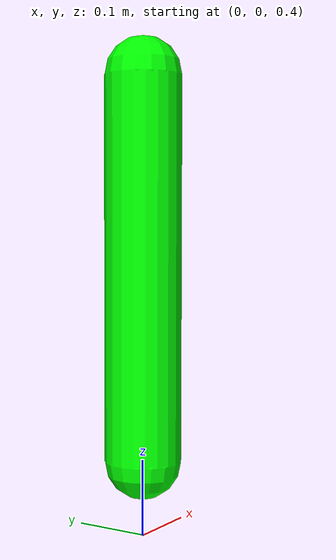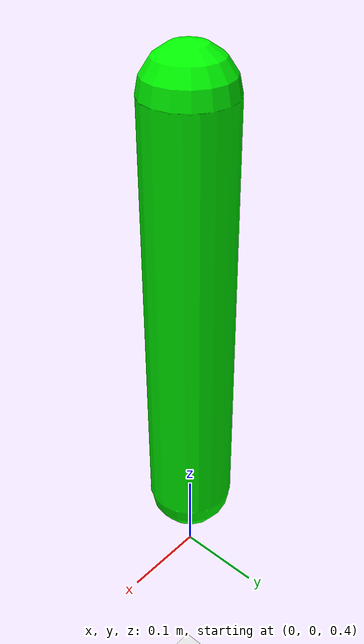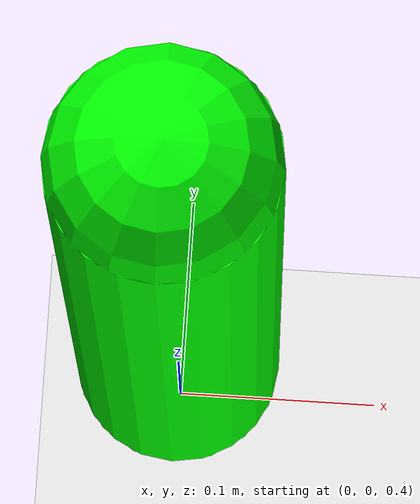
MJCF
<mujoco>
  <option gravity="0 0 -9.81"/>
  <visual>
    <headlight diffuse="0.6 0.6 0.6"  ambient="0.3 0.3 0.3" specular="0 0 0"/>
    <rgba haze="0.15 0.25 0.35 1"/>
  </visual>

  <worldbody>
    <geom type="plane" size="5 5 0.1" rgba=".9 .9 .9 1"/>

    <body pos="0 0 1" name="limb">
      <joint name="hinge" type="hinge" axis="0 1 0" damping="0.1"/>
      <geom type="capsule" size="0.05" fromto="0 0 0 0 0 -0.5" rgba="0 1 0 1"/>
    </body>
  </worldbody>

  <actuator>
    <motor joint="hinge" ctrlrange="-1 1" gear="50"/>
  </actuator>
</mujoco>
